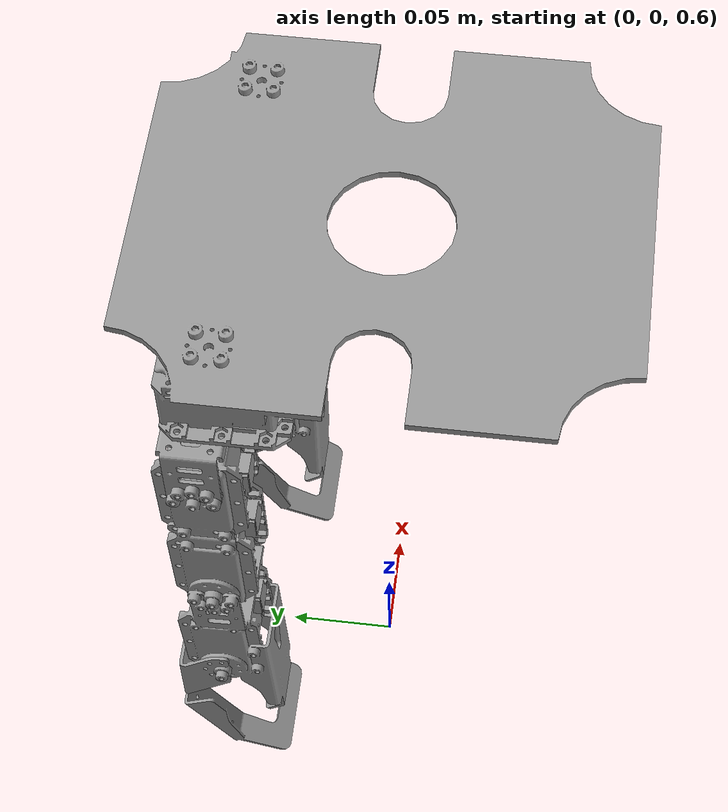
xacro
<?xml version="1.0"?>

<robot name="dualarm" xmlns:xacro="http://www.ros.org/wiki/xacro">

  <!-- some parameters -->
  <xacro:property name="pi" value="3.141592654" />

  <!-- Import all Gazebo-customization elements, including Gazebo colors -->
  <xacro:include filename="$(find dualarm)/urdf/dualarm.gazebo.xacro" />

  <!-- Import Rviz colors -->
  <xacro:include filename="$(find dualarm)/urdf/materials.xacro" />

  <!-- World -->
  <link name="world">
  </link>

  <!-- World fixed joint-->
  <joint name="world_fixed" type="fixed">
    <origin xyz="0 0 1" rpy="0 0 0"/>
    <parent link="world"/>
    <child link="base_link"/>
  </joint>

  <!-- base_link -->
  <link
    name="base_link">
    <inertial>
      <origin
        xyz="0.0038889 0.029746 -0.075699"
        rpy="0 0 0" />
      <mass
        value="0.18539" />
      <inertia
        ixx="0.00049652"
        ixy="8.6971E-10"
        ixz="1.7643E-10"
        iyy="0.00066277"
        iyz="5.6329E-05"
        izz="0.0010875" />
    </inertial>
    <visual>
      <origin
        xyz="0 0 0"
        rpy="0 0 0" />
      <geometry>
        <mesh
          filename="package://dualarm/meshes/base_link.STL" />
      </geometry>
      <material name="grey"/>
    </visual>
    <collision>
      <origin
        xyz="0 0 0"
        rpy="0 0 0" />
      <geometry>
        <mesh
          filename="package://dualarm/meshes/base_link.STL" />
      </geometry>
    </collision>
  </link>

  <!-- Link 11 -->
  <link
    name="Link11">
    <inertial>
      <origin
        xyz="-0.00269072051291798 -0.0191705920936856 -1.21513910045223E-13"
        rpy="0 0 0" />
      <mass
        value="0.0124705129427262" />
      <inertia
        ixx="2.48875397091717E-06"
        ixy="-2.9114222346888E-07"
        ixz="-9.51641516240206E-19"
        iyy="4.55520464990268E-06"
        iyz="-8.35562268263905E-18"
        izz="5.90161236148901E-06" />
    </inertial>
    <visual>
      <origin
        xyz="0 0 0"
        rpy="0 0 0" />
      <geometry>
        <mesh
          filename="package://dualarm/meshes/Link11.STL" />
      </geometry>
      <material name="grey"/>
    </visual>
    <collision>
      <origin
        xyz="0 0 0"
        rpy="0 0 0" />
      <geometry>
        <mesh
          filename="package://dualarm/meshes/Link11.STL" />
      </geometry>
    </collision>
  </link>

  <!-- joint 11 -->
  <joint
    name="Joint11"
    type="revolute">
    <origin
      xyz="-0.061111 0.06738 -0.10422"
      rpy="1.5708 0 0" />
    <parent
      link="base_link" />
    <child
      link="Link11" />
    <axis
      xyz="0 1 0" />
    <limit velocity="6.2" effort="30" lower="${-pi}" upper="${pi}" />
  </joint>

  <!-- Transmission 11 -->
  <transmission name="tran11">
    <type>transmission_interface/SimpleTransmission</type>
    <joint name="Joint11">
      <hardwareInterface>PositionJointInterface</hardwareInterface>
    </joint>
    <actuator name="motor11">
      <hardwareInterface>PositionJointInterface</hardwareInterface>
      <mechanicalReduction>1</mechanicalReduction>
    </actuator>
  </transmission>

  <!-- Link 12 -->
  <link
    name="Link12">
    <inertial>
      <origin
        xyz="0.000212933772728602 -0.0417952294892064 0.000631634826922869"
        rpy="0 0 0" />
      <mass
        value="0.101748371406373" />
      <inertia
        ixx="0.000111914150536004"
        ixy="6.25280181032915E-13"
        ixz="5.27690890980885E-11"
        iyy="2.05143313948086E-05"
        iyz="1.53155981169772E-06"
        izz="0.000119727474259993" />
    </inertial>
    <visual>
      <origin
        xyz="0 0 0"
        rpy="0 0 0" />
      <geometry>
        <mesh
          filename="package://dualarm/meshes/Link12.STL" />
      </geometry>
      <material name="grey"/>
    </visual>
    <collision>
      <origin
        xyz="0 0 0"
        rpy="0 0 0" />
      <geometry>
        <mesh
          filename="package://dualarm/meshes/Link12.STL" />
      </geometry>
    </collision>
  </link>

  <!-- joint 12 -->
  <joint
    name="Joint12"
    type="revolute">
    <origin
      xyz="0 -0.0335 0"
      rpy="0 0 0" />
    <parent
      link="Link11" />
    <child
      link="Link12" />
    <axis
      xyz="1 0 0" />
    <limit velocity="6.2" effort="30" lower="${-pi}" upper="${pi}" />
  </joint>

  <!-- Transmission 12 -->
  <transmission name="tran12">
    <type>transmission_interface/SimpleTransmission</type>
    <joint name="Joint12">
      <hardwareInterface>PositionJointInterface</hardwareInterface>
    </joint>
    <actuator name="motor12">
      <hardwareInterface>PositionJointInterface</hardwareInterface>
      <mechanicalReduction>1</mechanicalReduction>
    </actuator>
  </transmission>

  <!-- Link 13 -->
  <link
    name="Link13">
    <inertial>
      <origin
        xyz="-0.000258356234005427 -0.0534811075287439 0.00109998454286461"
        rpy="0 0 0" />
      <mass
        value="0.0723018406954735" />
      <inertia
        ixx="5.24840463906742E-05"
        ixy="6.59201374784951E-07"
        ixz="-1.48226262014348E-07"
        iyy="1.93084109883808E-05"
        iyz="3.7637324307432E-06"
        izz="5.93005152649361E-05" />
    </inertial>
    <visual>
      <origin
        xyz="0 0 0"
        rpy="0 0 0" />
      <geometry>
        <mesh
          filename="package://dualarm/meshes/Link13.STL" />
      </geometry>
      <material name="grey"/>
    </visual>
    <collision>
      <origin
        xyz="0 0 0"
        rpy="0 0 0" />
      <geometry>
        <mesh
          filename="package://dualarm/meshes/Link13.STL" />
      </geometry>
    </collision>
  </link>

  <!-- joint 13 -->
  <joint
    name="Joint13"
    type="revolute">
    <origin
      xyz="0 -0.0835900457071312 0.00129006150228277"
      rpy="0 0 0" />
    <parent
      link="Link12" />
    <child
      link="Link13" />
    <axis
      xyz="1 0 0" />
    <limit velocity="6.2" effort="30" lower="${-pi}" upper="${pi}" />
  </joint>

  <!-- Transmission 13 -->
  <transmission name="tran13">
    <type>transmission_interface/SimpleTransmission</type>
    <joint name="Joint13">
      <hardwareInterface>PositionJointInterface</hardwareInterface>
    </joint>
    <actuator name="motor13">
      <hardwareInterface>PositionJointInterface</hardwareInterface>
      <mechanicalReduction>1</mechanicalReduction>
    </actuator>
  </transmission>

  <!-- Link 14 -->
  <link
    name="Link14">
    <inertial>
      <origin
        xyz="-0.000250000250822911 -0.00692686689003473 0.0375604021905745"
        rpy="0 0 0" />
      <mass
        value="0.00851487862558139" />
      <inertia
        ixx="6.91407797543249E-06"
        ixy="1.42108067425982E-15"
        ixz="5.91004952846371E-14"
        iyy="8.62639140242658E-06"
        iyz="-2.08331081779172E-06"
        izz="4.40145500323547E-06" />
    </inertial>
    <visual>
      <origin
        xyz="0 0 0"
        rpy="0 0 0" />
      <geometry>
        <mesh
          filename="package://dualarm/meshes/Link14.STL" />
      </geometry>
      <material name="grey"/>
    </visual>
    <collision>
      <origin
        xyz="0 0 0"
        rpy="0 0 0" />
      <geometry>
        <mesh
          filename="package://dualarm/meshes/Link14.STL" />
      </geometry>
    </collision>
  </link>

  <!-- joint 14 -->
  <joint
    name="Joint14"
    type="revolute">
    <origin
      xyz="0 -0.0719045361508551 -0.000988777522708054"
      rpy="1.5707963267949 0 0" />
    <parent
      link="Link13" />
    <child
      link="Link14" />
    <axis
      xyz="1 0 0" />
    <limit velocity="6.2" effort="30" lower="${-pi}" upper="${pi}" />
  </joint>

  <!-- Transmission 14 -->
  <transmission name="tran14">
    <type>transmission_interface/SimpleTransmission</type>
    <joint name="Joint14">
      <hardwareInterface>PositionJointInterface</hardwareInterface>
    </joint>
    <actuator name="motor14">
      <hardwareInterface>PositionJointInterface</hardwareInterface>
      <mechanicalReduction>1</mechanicalReduction>
    </actuator>
  </transmission>

  <!-- Link 21 -->
  <link
    name="Link21">
    <inertial>
      <origin
        xyz="0.00269072051291251 -0.0191705920936802 -1.75331971163928E-13"
        rpy="0 0 0" />
      <mass
        value="0.0124705129427262" />
      <inertia
        ixx="2.48875397091582E-06"
        ixy="2.91142223467643E-07"
        ixz="2.55062796241951E-18"
        iyy="4.55520464990268E-06"
        iyz="-5.85000658043222E-18"
        izz="5.90161236148765E-06" />
    </inertial>
    <visual>
      <origin
        xyz="0 0 0"
        rpy="0 0 0" />
      <geometry>
        <mesh
          filename="package://dualarm/meshes/Link21.STL" />
      </geometry>
      <material name="grey"/>
    </visual>
    <collision>
      <origin
        xyz="0 0 0"
        rpy="0 0 0" />
      <geometry>
        <mesh
          filename="package://dualarm/meshes/Link21.STL" />
      </geometry>
    </collision>
  </link>

  <!-- joint 21 -->
  <joint
    name="Joint21"
    type="revolute">
    <origin
      xyz="0.0688890331121791 0.0673797743375163 -0.104222956866293"
      rpy="1.5707963267949 0 0" />
    <parent
      link="base_link" />
    <child
      link="Link21" />
    <axis
      xyz="0 1 0" />
    <limit velocity="6.2" effort="30" lower="${-pi}" upper="${pi}" />
  </joint>

  <!-- Transmission 21 -->
  <transmission name="tran21">
    <type>transmission_interface/SimpleTransmission</type>
    <joint name="Joint21">
      <hardwareInterface>PositionJointInterface</hardwareInterface>
    </joint>
    <actuator name="motor21">
      <hardwareInterface>PositionJointInterface</hardwareInterface>
      <mechanicalReduction>1</mechanicalReduction>
    </actuator>
  </transmission>

  <!-- Link 22 -->
  <link
    name="Link22">
    <inertial>
      <origin
        xyz="-0.000212936674845565 -0.0417999999999742 1.33958492594122E-05"
        rpy="0 0 0" />
      <mass
        value="0.101748394735894" />
      <inertia
        ixx="0.000111914173347709"
        ixy="-3.74274225546969E-14"
        ixz="5.05175437048768E-11"
        iyy="2.04906999368515E-05"
        iyz="-1.89993088220696E-11"
        izz="0.00011975113683008" />
    </inertial>
    <visual>
      <origin
        xyz="0 0 0"
        rpy="0 0 0" />
      <geometry>
        <mesh
          filename="package://dualarm/meshes/Link22.STL" />
      </geometry>
      <material name="grey"/>
    </visual>
    <collision>
      <origin
        xyz="0 0 0"
        rpy="0 0 0" />
      <geometry>
        <mesh
          filename="package://dualarm/meshes/Link22.STL" />
      </geometry>
    </collision>
  </link>

  <!-- joint 22 -->
  <joint
    name="Joint22"
    type="revolute">
    <origin
      xyz="0 -0.0335000000001695 0"
      rpy="0 0 0" />
    <parent
      link="Link21" />
    <child
      link="Link22" />
    <axis
      xyz="1 0 0" />
    <limit velocity="6.2" effort="30" lower="${-pi}" upper="${pi}" />
  </joint>

  <!-- Transmission 22 -->
  <transmission name="tran22">
    <type>transmission_interface/SimpleTransmission</type>
    <joint name="Joint22">
      <hardwareInterface>PositionJointInterface</hardwareInterface>
    </joint>
    <actuator name="motor22">
      <hardwareInterface>PositionJointInterface</hardwareInterface>
      <mechanicalReduction>1</mechanicalReduction>
    </actuator>
  </transmission>

  <!-- Link 23 -->
  <link
    name="Link23">
    <inertial>
      <origin
        xyz="0.000258356011076918 -0.0534802413457883 0.00511995884963463"
        rpy="0 0 0" />
      <mass
        value="0.0723018421286062" />
      <inertia
        ixx="5.29721949031617E-05"
        ixy="-6.6483176337677E-07"
        ixz="-2.47921801899711E-08"
        iyy="1.95516873635774E-05"
        iyz="7.0500598856354E-06"
        izz="5.95453878396972E-05" />
    </inertial>
    <visual>
      <origin
        xyz="0 0 0"
        rpy="0 0 0" />
      <geometry>
        <mesh
          filename="package://dualarm/meshes/Link23.STL" />
      </geometry>
      <material name="grey"/>
    </visual>
    <collision>
      <origin
        xyz="0 0 0"
        rpy="0 0 0" />
      <geometry>
        <mesh
          filename="package://dualarm/meshes/Link23.STL" />
      </geometry>
    </collision>
  </link>

  <!-- joint 23 -->
  <joint
    name="Joint23"
    type="revolute">
    <origin
      xyz="0 -0.0835999999999738 0"
      rpy="0 0 0" />
    <parent
      link="Link22" />
    <child
      link="Link23" />
    <axis
      xyz="1 0 0" />
    <limit velocity="6.2" effort="30" lower="${-pi}" upper="${pi}" />
  </joint>

  <!-- Transmission 23 -->
  <transmission name="tran23">
    <type>transmission_interface/SimpleTransmission</type>
    <joint name="Joint23">
      <hardwareInterface>PositionJointInterface</hardwareInterface>
    </joint>
    <actuator name="motor23">
      <hardwareInterface>PositionJointInterface</hardwareInterface>
      <mechanicalReduction>1</mechanicalReduction>
    </actuator>
  </transmission>

  <!-- Link 24 -->
  <link
    name="Link24">
    <inertial>
      <origin
        xyz="9.99997491718391E-05 -0.00692686689003466 0.0375604021905746"
        rpy="0 0 0" />
      <mass
        value="0.00851487862558145" />
      <inertia
        ixx="6.91407797543258E-06"
        ixy="1.42107441737012E-15"
        ixz="5.91004796186852E-14"
        iyy="8.62639140242662E-06"
        iyz="-2.08331081779176E-06"
        izz="4.4014550032355E-06" />
    </inertial>
    <visual>
      <origin
        xyz="0 0 0"
        rpy="0 0 0" />
      <geometry>
        <mesh
          filename="package://dualarm/meshes/Link24.STL" />
      </geometry>
      <material name="grey"/>
    </visual>
    <collision>
      <origin
        xyz="0 0 0"
        rpy="0 0 0" />
      <geometry>
        <mesh
          filename="package://dualarm/meshes/Link24.STL" />
      </geometry>
    </collision>
  </link>

  <!-- joint 24 -->
  <joint
    name="Joint24"
    type="revolute">
    <origin
      xyz="0 -0.0718 0.004"
      rpy="1.5708 0 0" />
    <parent
      link="Link23" />
    <child
      link="Link24" />
    <axis
      xyz="1 0 0" />
    <limit velocity="6.2" effort="30" lower="${-pi}" upper="${pi}" />
  </joint>

  <!-- Transmission 24 -->
  <transmission name="tran24">
    <type>transmission_interface/SimpleTransmission</type>
    <joint name="Joint24">
      <hardwareInterface>PositionJointInterface</hardwareInterface>
    </joint>
    <actuator name="motor24">
      <hardwareInterface>PositionJointInterface</hardwareInterface>
      <mechanicalReduction>1</mechanicalReduction>
    </actuator>
  </transmission>

</robot>
